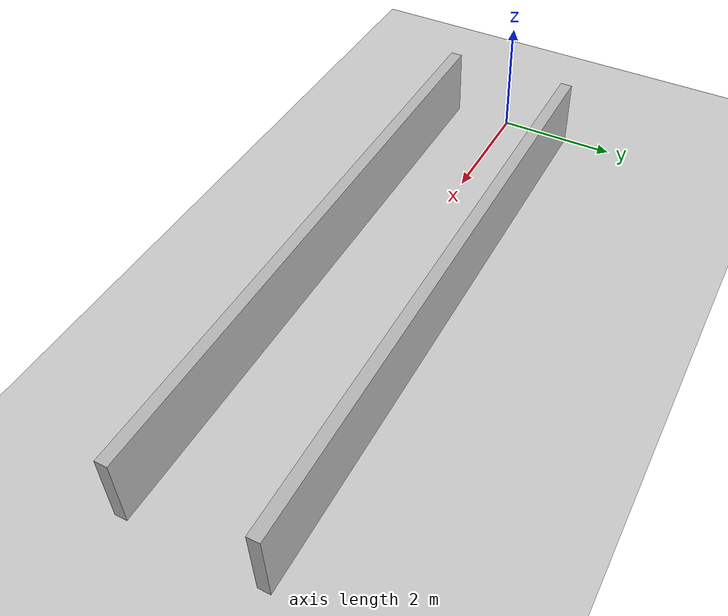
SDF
<?xml version="1.0"?>
<sdf version="1.6">
  <world name="v2-04g-r2-corridor-s4962">
    <gravity>0 0 -9.81</gravity>
    <physics name="v2_deterministic" type="ode">
      <max_step_size>0.002</max_step_size>
      <real_time_update_rate>500</real_time_update_rate>
    </physics>
    <include>
      <uri>model://sun</uri>
    </include>
    <include>
      <uri>model://ground_plane</uri>
    </include>
    <model name="corridor-left">
      <static>true</static>
      <pose>5.007469260 1.087350070 0.600000000 0 0 0.003411743</pose>
      <link name="link">
        <collision name="collision">
          <geometry>
            <box>
              <size>10.000000 0.200000 1.200000</size>
            </box>
          </geometry>
        </collision>
        <visual name="visual">
          <geometry>
            <box>
              <size>10.000000 0.200000 1.200000</size>
            </box>
          </geometry>
        </visual>
      </link>
    </model>
    <model name="corridor-right">
      <static>true</static>
      <pose>4.997443437 -1.086286322 0.600000000 0 0 0.000161578</pose>
      <link name="link">
        <collision name="collision">
          <geometry>
            <box>
              <size>10.000000 0.200000 1.200000</size>
            </box>
          </geometry>
        </collision>
        <visual name="visual">
          <geometry>
            <box>
              <size>10.000000 0.200000 1.200000</size>
            </box>
          </geometry>
        </visual>
      </link>
    </model>
  </world>
</sdf>
